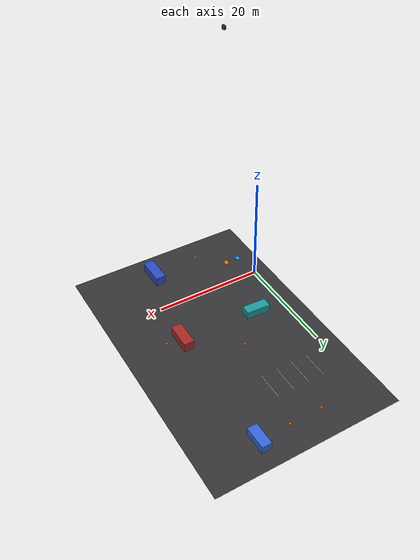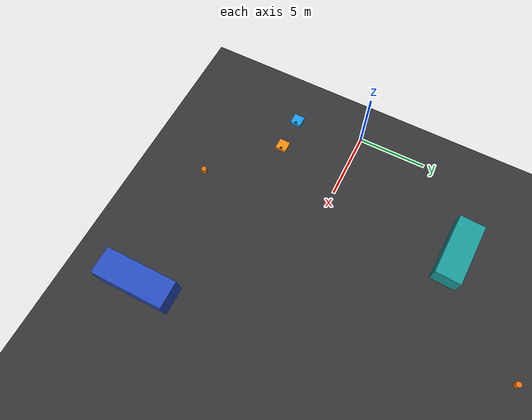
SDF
<?xml version="1.0" ?>
<sdf version="1.8">
  <world name="deliverybot_parking">
    <physics name="1ms" type="ignored">
      <max_step_size>0.001</max_step_size>
      <real_time_factor>1.0</real_time_factor>
    </physics>
    <plugin filename="gz-sim-physics-system" name="gz::sim::systems::Physics"/>
    <plugin filename="gz-sim-user-commands-system" name="gz::sim::systems::UserCommands"/>
    <plugin filename="gz-sim-scene-broadcaster-system" name="gz::sim::systems::SceneBroadcaster"/>
    <plugin filename="gz-sim-sensors-system" name="gz::sim::systems::Sensors">
      <render_engine>ogre2</render_engine>
    </plugin>

    <light type="directional" name="sun">
      <cast_shadows>false</cast_shadows>
      <pose>0 0 60 0 0 0</pose>
      <diffuse>0.95 0.95 0.95 1</diffuse>
      <direction>-0.2 0.2 -0.95</direction>
    </light>

    <!-- ===== 아스팔트 바닥 (어두운 무채색) ===== -->
    <model name="ground">
      <static>true</static>
      <pose>14 12 0 0 0 0</pose>
      <link name="link">
        <collision name="col"><geometry><box><size>34 52 0.02</size></box></geometry></collision>
        <visual name="vis"><geometry><box><size>34 52 0.02</size></box></geometry>
          <material><ambient>0.20 0.20 0.21 1</ambient><diffuse>0.20 0.20 0.21 1</diffuse></material></visual>
      </link>
    </model>

    <!-- ===== 주차선 (흰색, 무채색 → 맵에서 무시되어야 함: 파이프라인 시험용) ===== -->
    <model name="lines"><static>true</static><pose>0 0 0.012 0 0 0</pose><link name="l">
      <visual name="a"><pose>4 25 0 0 0 0</pose><geometry><box><size>0.12 5 0.002</size></box></geometry>
        <material><ambient>0.9 0.9 0.9 1</ambient><diffuse>0.9 0.9 0.9 1</diffuse></material></visual>
      <visual name="b"><pose>7 25 0 0 0 0</pose><geometry><box><size>0.12 5 0.002</size></box></geometry>
        <material><ambient>0.9 0.9 0.9 1</ambient><diffuse>0.9 0.9 0.9 1</diffuse></material></visual>
      <visual name="c"><pose>10 25 0 0 0 0</pose><geometry><box><size>0.12 5 0.002</size></box></geometry>
        <material><ambient>0.9 0.9 0.9 1</ambient><diffuse>0.9 0.9 0.9 1</diffuse></material></visual>
      <visual name="d"><pose>13 25 0 0 0 0</pose><geometry><box><size>0.12 5 0.002</size></box></geometry>
        <material><ambient>0.9 0.9 0.9 1</ambient><diffuse>0.9 0.9 0.9 1</diffuse></material></visual>
    </link></model>

    <!-- ===== 차량 4대 (원본 좌표, 유채색 박스) ===== -->
    <model name="prius_hybrid"><static>true</static><pose>5.58 9.31 0.75 0 0 -0.05</pose>
      <link name="body"><collision name="c"><geometry><box><size>4.5 1.8 1.5</size></box></geometry></collision>
        <visual name="v"><geometry><box><size>4.5 1.8 1.5</size></box></geometry>
          <material><ambient>0.1 0.6 0.6 1</ambient><diffuse>0.1 0.6 0.6 1</diffuse></material></visual></link></model>

    <model name="suv"><static>true</static><pose>20.36 8.91 0.9 0 0 -1.58</pose>
      <link name="body"><collision name="c"><geometry><box><size>4.8 1.9 1.8</size></box></geometry></collision>
        <visual name="v"><geometry><box><size>4.8 1.9 1.8</size></box></geometry>
          <material><ambient>0.65 0.15 0.15 1</ambient><diffuse>0.65 0.15 0.15 1</diffuse></material></visual></link></model>

    <model name="pickup"><static>true</static><pose>16.90 -8.63 0.9 0 0 1.58</pose>
      <link name="body"><collision name="c"><geometry><box><size>5.2 1.9 1.8</size></box></geometry></collision>
        <visual name="v"><geometry><box><size>5.2 1.9 1.8</size></box></geometry>
          <material><ambient>0.15 0.3 0.75 1</ambient><diffuse>0.15 0.3 0.75 1</diffuse></material></visual></link></model>

    <model name="hatchback_blue"><static>true</static><pose>20.34 33.03 0.75 0 0 -1.56</pose>
      <link name="body"><collision name="c"><geometry><box><size>4.1 1.75 1.5</size></box></geometry></collision>
        <visual name="v"><geometry><box><size>4.1 1.75 1.5</size></box></geometry>
          <material><ambient>0.2 0.4 0.85 1</ambient><diffuse>0.2 0.4 0.85 1</diffuse></material></visual></link></model>

    <!-- ===== 공사 콘 5개 (원본 좌표, 주황) ===== -->
    <model name="cone_0"><static>true</static><pose>7.75 -9.15 0.25 0 0 0</pose>
      <link name="l"><collision name="c"><geometry><cylinder><radius>0.18</radius><length>0.5</length></cylinder></geometry></collision>
        <visual name="v"><geometry><cylinder><radius>0.18</radius><length>0.5</length></cylinder></geometry>
          <material><ambient>0.95 0.45 0.05 1</ambient><diffuse>0.95 0.45 0.05 1</diffuse></material></visual></link></model>
    <model name="cone_1"><static>true</static><pose>11.72 15.34 0.25 0 0 0</pose>
      <link name="l"><collision name="c"><geometry><cylinder><radius>0.18</radius><length>0.5</length></cylinder></geometry></collision>
        <visual name="v"><geometry><cylinder><radius>0.18</radius><length>0.5</length></cylinder></geometry>
          <material><ambient>0.95 0.45 0.05 1</ambient><diffuse>0.95 0.45 0.05 1</diffuse></material></visual></link></model>
    <model name="cone_2"><static>true</static><pose>23.16 8.41 0.25 0 0 0</pose>
      <link name="l"><collision name="c"><geometry><cylinder><radius>0.18</radius><length>0.5</length></cylinder></geometry></collision>
        <visual name="v"><geometry><cylinder><radius>0.18</radius><length>0.5</length></cylinder></geometry>
          <material><ambient>0.95 0.45 0.05 1</ambient><diffuse>0.95 0.45 0.05 1</diffuse></material></visual></link></model>
    <model name="cone_3"><static>true</static><pose>8.63 32.98 0.25 0 0 0</pose>
      <link name="l"><collision name="c"><geometry><cylinder><radius>0.18</radius><length>0.5</length></cylinder></geometry></collision>
        <visual name="v"><geometry><cylinder><radius>0.18</radius><length>0.5</length></cylinder></geometry>
          <material><ambient>0.95 0.45 0.05 1</ambient><diffuse>0.95 0.45 0.05 1</diffuse></material></visual></link></model>
    <model name="cone_4"><static>true</static><pose>14.66 33.04 0.25 0 0 0</pose>
      <link name="l"><collision name="c"><geometry><cylinder><radius>0.18</radius><length>0.5</length></cylinder></geometry></collision>
        <visual name="v"><geometry><cylinder><radius>0.18</radius><length>0.5</length></cylinder></geometry>
          <material><ambient>0.95 0.45 0.05 1</ambient><diffuse>0.95 0.45 0.05 1</diffuse></material></visual></link></model>

    <!-- ===== CCTV (수직 하방 카메라, 5Hz) ===== -->
    <model name="cctv">
      <static>true</static>
      <pose>14 12 55 0 1.5708 0</pose>
      <link name="link">
        <visual name="vis"><geometry><box><size>0.5 0.5 0.3</size></box></geometry>
          <material><ambient>0.1 0.1 0.1 1</ambient><diffuse>0.1 0.1 0.1 1</diffuse></material></visual>
        <sensor name="cctv_cam" type="camera">
          <topic>/cctv/image_raw</topic>
          <update_rate>5</update_rate>
          <camera>
            <horizontal_fov>0.852</horizontal_fov>
            <image><width>1000</width><height>640</height><format>R8G8B8</format></image>
            <clip><near>1.0</near><far>200</far></clip>
          </camera>
          <always_on>true</always_on>
        </sensor>
      </link>
    </model>

    <!-- ===== Front 로봇 (0.8m, 주황) — 초기 (3.25, -5) ===== -->
    <model name="front_robot">
      <pose>3.25 -5.0 0.15 0 0 0</pose>
      <link name="base_link">
        <inertial><mass>40</mass>
          <inertia><ixx>2.0</ixx><iyy>2.0</iyy><izz>3.0</izz><ixy>0</ixy><ixz>0</ixz><iyz>0</iyz></inertia></inertial>
        <collision name="col"><geometry><box><size>0.8 0.8 0.3</size></box></geometry></collision>
        <visual name="vis"><geometry><box><size>0.8 0.8 0.3</size></box></geometry>
          <material><ambient>0.95 0.55 0.05 1</ambient><diffuse>0.95 0.55 0.05 1</diffuse></material></visual>
        <visual name="mark"><pose>0.3 0 0.18 0 0 0</pose><geometry><box><size>0.15 0.15 0.06</size></box></geometry>
          <material><ambient>0 0 0 1</ambient><diffuse>0 0 0 1</diffuse></material></visual>
      </link>
      <plugin filename="gz-sim-velocity-control-system" name="gz::sim::systems::VelocityControl">
        <topic>/model/front_robot/cmd_vel</topic>
      </plugin>
      <plugin filename="gz-sim-odometry-publisher-system" name="gz::sim::systems::OdometryPublisher">
        <odom_frame>front_robot/odom</odom_frame>
        <robot_base_frame>front_robot/base_link</robot_base_frame>
        <odom_topic>/model/front_robot/odometry</odom_topic>
        <odom_publish_frequency>50</odom_publish_frequency>
      </plugin>
    </model>

    <!-- ===== Rear 로봇 (0.8m, 하늘색) — 초기 (0.75, -5), 휠베이스 2.5m ===== -->
    <model name="rear_robot">
      <pose>0.75 -5.0 0.15 0 0 0</pose>
      <link name="base_link">
        <inertial><mass>40</mass>
          <inertia><ixx>2.0</ixx><iyy>2.0</iyy><izz>3.0</izz><ixy>0</ixy><ixz>0</ixz><iyz>0</iyz></inertia></inertial>
        <collision name="col"><geometry><box><size>0.8 0.8 0.3</size></box></geometry></collision>
        <visual name="vis"><geometry><box><size>0.8 0.8 0.3</size></box></geometry>
          <material><ambient>0.1 0.6 0.95 1</ambient><diffuse>0.1 0.6 0.95 1</diffuse></material></visual>
        <visual name="mark"><pose>0.3 0 0.18 0 0 0</pose><geometry><box><size>0.15 0.15 0.06</size></box></geometry>
          <material><ambient>0 0 0 1</ambient><diffuse>0 0 0 1</diffuse></material></visual>
      </link>
      <plugin filename="gz-sim-velocity-control-system" name="gz::sim::systems::VelocityControl">
        <topic>/model/rear_robot/cmd_vel</topic>
      </plugin>
      <plugin filename="gz-sim-odometry-publisher-system" name="gz::sim::systems::OdometryPublisher">
        <odom_frame>rear_robot/odom</odom_frame>
        <robot_base_frame>rear_robot/base_link</robot_base_frame>
        <odom_topic>/model/rear_robot/odometry</odom_topic>
        <odom_publish_frequency>50</odom_publish_frequency>
      </plugin>
    </model>

  </world>
</sdf>
